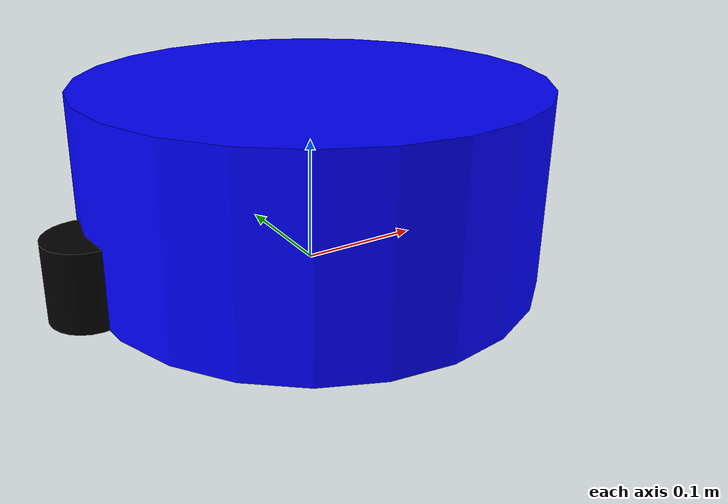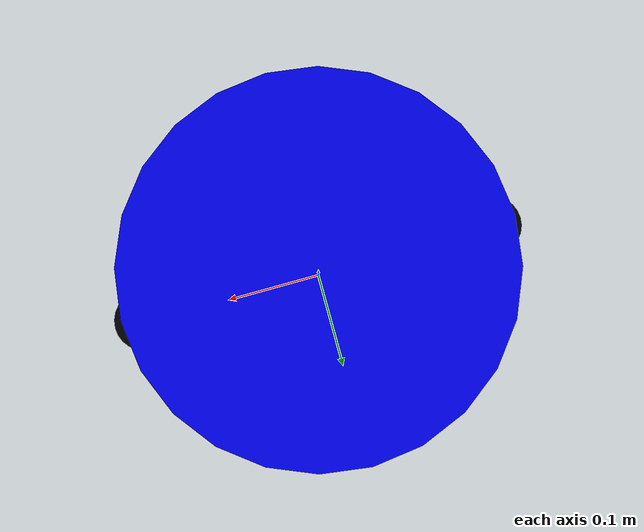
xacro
<?xml version="1.0"?>
<robot name="cylindrical_diff_drive_robot">

  <link name="base_link">
    <inertial>
      <mass value="2.0" />  <inertia ixx="0.001" ixy="0.0" ixz="0.0" iyx="0.0" iyy="0.001" iyz="0.0" izx="0.0" izy="0.0" izz="0.001" />
    </inertial>
    <visual>
      <origin xyz="0 0 0.075" />  <geometry>
        <cylinder radius="0.18" length="0.15" />
      </geometry>
      <material name="Blue">
        <color rgba="0 0 1 1" />
      </material>
    </visual>
  </link>

  <joint name="left_wheel_joint" type="revolute" axis="1 0 0">
    <parent link="base_link" />
    <child link="left_wheel_link" />
    <origin xyz="0.18 0.0 0.03" />  <axis xyz="1 0 0" />
    <limit lower="-1.57" upper="1.57" effort="10" velocity="10" />  </joint>

  <joint name="right_wheel_joint" type="revolute" axis="1 0 0">
    <parent link="base_link" />
    <child link="right_wheel_link" />
    <origin xyz="-0.18 0.0 0.03" />  <axis xyz="1 0 0" />
    <limit lower="-1.57" upper="1.57" effort="10" velocity="10" />  </joint>

  <link name="left_wheel_link">
    <inertial>
      <mass value="0.5" />  <inertia ixx="0.0005" ixy="0.0" ixz="0.0" iyx="0.0" iyy="0.0005" iyz="0.0" izx="0.0" izy="0.0" izz="0.0005" />
    </inertial>
    <visual>
      <origin xyz="0 0 0" />
      <geometry>
        <cylinder radius="0.03" length="0.06" />
      </geometry>
      <material name="Black">
        <color rgba="0 0 0 1" />
      </material>
    </visual>
  </link>

  <link name="right_wheel_link">
    <inertial>
      <mass value="0.5" />  <inertia ixx="0.0005" ixy="0.0" ixz="0.0" iyx="0.0" iyy="0.0005" iyz="0.0" izx="0.0" izy="0.0" izz="0.0005" />
    </inertial>
    <visual>
      <origin xyz="0 0 0" />
      <geometry>
        <cylinder radius="0.03" length="0.06" />
      </geometry>
      <material name="Black">
        <color rgba="0 0 0 1" />
      </material>
    </visual>
  </link>

</robot>
